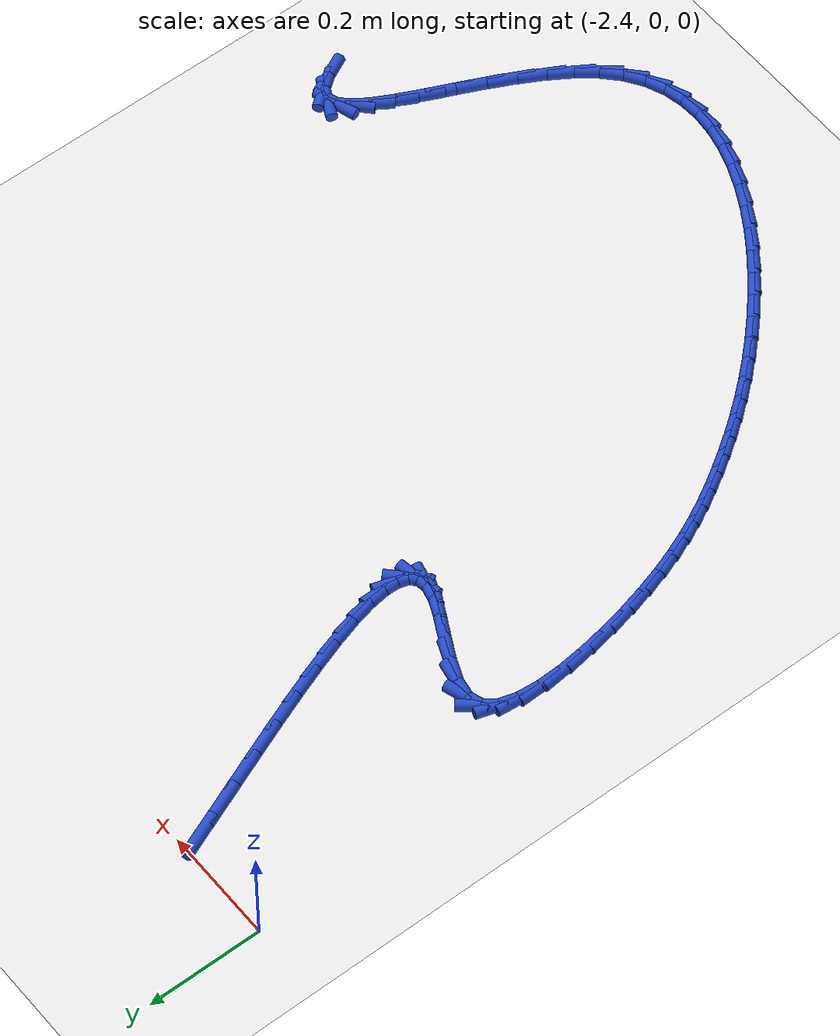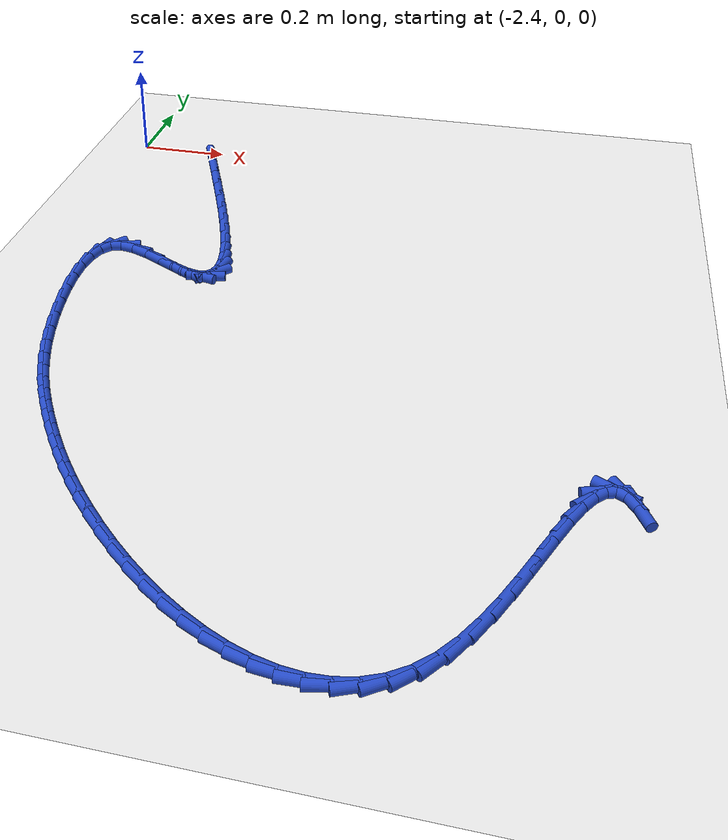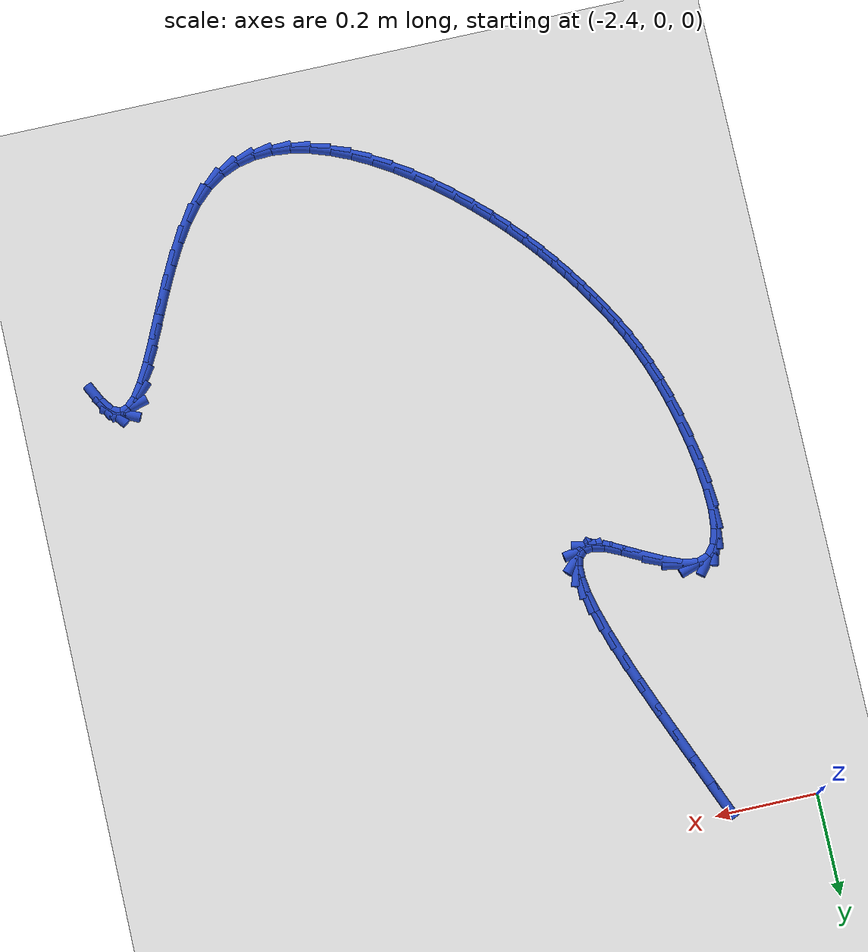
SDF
<sdf version="1.6">
 <world name="default">
  <model name="ground_plane">
   <static>1</static>
   <link name="link">
    <collision name="collision">
     <geometry><plane><normal>0 0 1</normal><size>100 100</size></plane></geometry>
     <surface><friction><ode><mu>100</mu><mu2>50</mu2></ode></friction></surface>
    </collision>
    <visual name="visual">
     <cast_shadows>0</cast_shadows>
     <geometry><plane><normal>0 0 1</normal><size>100 100</size></plane></geometry>
     <material>
      <script><uri>file://media/materials/scripts/gazebo.material</uri><name>Gazebo/WhiteGlow</name></script>
     </material>
    </visual>
   </link>
  </model>
  <model name="line">
   <link name="link_144">
    <pose>-2.2204279432989757 -0.02696453913052316 0.01 0 1.57 -1.1791450326111783</pose>
    <collision name="collision">
     <geometry><cylinder><radius>0.01</radius><length>0.08</length></cylinder></geometry>
    </collision>
    <visual name="visual">
     <material>
      <script><name>Gazebo/Blue</name><uri>file://media/materials/scripts/gazebo.material</uri></script>
     </material>
     <geometry><cylinder><radius>0.01</radius><length>0.08</length></cylinder></geometry>
    </visual>
   </link>
   <link name="link_145">
    <pose>-2.1966252475764843 -0.0846000640288197 0.01 0 1.57 -1.177241636359027</pose>
    <collision name="collision">
     <geometry><cylinder><radius>0.01</radius><length>0.08</length></cylinder></geometry>
    </collision>
    <visual name="visual">
     <material>
      <script><name>Gazebo/Blue</name><uri>file://media/materials/scripts/gazebo.material</uri></script>
     </material>
     <geometry><cylinder><radius>0.01</radius><length>0.08</length></cylinder></geometry>
    </visual>
   </link>
   <link name="link_146">
    <pose>-2.172904055237694 -0.1417297837772376 0.01 0 1.57 -1.1792668858618778</pose>
    <collision name="collision">
     <geometry><cylinder><radius>0.01</radius><length>0.08</length></cylinder></geometry>
    </collision>
    <visual name="visual">
     <material>
      <script><name>Gazebo/Blue</name><uri>file://media/materials/scripts/gazebo.material</uri></script>
     </material>
     <geometry><cylinder><radius>0.01</radius><length>0.08</length></cylinder></geometry>
    </visual>
   </link>
   <link name="link_147">
    <pose>-2.1497819063587293 -0.19773678435797556 0.01 0 1.57 -1.185555240978088</pose>
    <collision name="collision">
     <geometry><cylinder><radius>0.01</radius><length>0.08</length></cylinder></geometry>
    </collision>
    <visual name="visual">
     <material>
      <script><name>Gazebo/Blue</name><uri>file://media/materials/scripts/gazebo.material</uri></script>
     </material>
     <geometry><cylinder><radius>0.01</radius><length>0.08</length></cylinder></geometry>
    </visual>
   </link>
   <link name="link_148">
    <pose>-2.127776341015717 -0.2520041517532323 0.01 0 1.57 -1.1968314862634652</pose>
    <collision name="collision">
     <geometry><cylinder><radius>0.01</radius><length>0.08</length></cylinder></geometry>
    </collision>
    <visual name="visual">
     <material>
      <script><name>Gazebo/Blue</name><uri>file://media/materials/scripts/gazebo.material</uri></script>
     </material>
     <geometry><cylinder><radius>0.01</radius><length>0.08</length></cylinder></geometry>
    </visual>
   </link>
   <link name="link_149">
    <pose>-2.1074048992847825 -0.3039149719452069 0.01 0 1.57 -1.2143877123981714</pose>
    <collision name="collision">
     <geometry><cylinder><radius>0.01</radius><length>0.08</length></cylinder></geometry>
    </collision>
    <visual name="visual">
     <material>
      <script><name>Gazebo/Blue</name><uri>file://media/materials/scripts/gazebo.material</uri></script>
     </material>
     <geometry><cylinder><radius>0.01</radius><length>0.08</length></cylinder></geometry>
    </visual>
   </link>
   <link name="link_150">
    <pose>-2.089185121242051 -0.3528523309160983 0.01 0 1.57 -1.240439045323987</pose>
    <collision name="collision">
     <geometry><cylinder><radius>0.01</radius><length>0.08</length></cylinder></geometry>
    </collision>
    <visual name="visual">
     <material>
      <script><name>Gazebo/Blue</name><uri>file://media/materials/scripts/gazebo.material</uri></script>
     </material>
     <geometry><cylinder><radius>0.01</radius><length>0.08</length></cylinder></geometry>
    </visual>
   </link>
   <link name="link_151">
    <pose>-2.0736345469636492 -0.3981993146481051 0.01 0 1.57 -1.278850732788611</pose>
    <collision name="collision">
     <geometry><cylinder><radius>0.01</radius><length>0.08</length></cylinder></geometry>
    </collision>
    <visual name="visual">
     <material>
      <script><name>Gazebo/Blue</name><uri>file://media/materials/scripts/gazebo.material</uri></script>
     </material>
     <geometry><cylinder><radius>0.01</radius><length>0.08</length></cylinder></geometry>
    </visual>
   </link>
   <link name="link_152">
    <pose>-2.0612707165257023 -0.43933900912342505 0.01 0 1.57 -1.336714377932181</pose>
    <collision name="collision">
     <geometry><cylinder><radius>0.01</radius><length>0.08</length></cylinder></geometry>
    </collision>
    <visual name="visual">
     <material>
      <script><name>Gazebo/Blue</name><uri>file://media/materials/scripts/gazebo.material</uri></script>
     </material>
     <geometry><cylinder><radius>0.01</radius><length>0.08</length></cylinder></geometry>
    </visual>
   </link>
   <link name="link_153">
    <pose>-2.0526111700043357 -0.4756545003242598 0.01 0 1.57 -1.4280392559908983</pose>
    <collision name="collision">
     <geometry><cylinder><radius>0.01</radius><length>0.08</length></cylinder></geometry>
    </collision>
    <visual name="visual">
     <material>
      <script><name>Gazebo/Blue</name><uri>file://media/materials/scripts/gazebo.material</uri></script>
     </material>
     <geometry><cylinder><radius>0.01</radius><length>0.08</length></cylinder></geometry>
    </visual>
   </link>
   <link name="link_154">
    <pose>-2.048173447475675 -0.5065288742328069 0.01 0 1.57 1.5586419698361798</pose>
    <collision name="collision">
     <geometry><cylinder><radius>0.01</radius><length>0.08</length></cylinder></geometry>
    </collision>
    <visual name="visual">
     <material>
      <script><name>Gazebo/Blue</name><uri>file://media/materials/scripts/gazebo.material</uri></script>
     </material>
     <geometry><cylinder><radius>0.01</radius><length>0.08</length></cylinder></geometry>
    </visual>
   </link>
   <link name="link_155">
    <pose>-2.048475089015846 -0.5313452168312648 0.01 0 1.57 1.273477277662334</pose>
    <collision name="collision">
     <geometry><cylinder><radius>0.01</radius><length>0.08</length></cylinder></geometry>
    </collision>
    <visual name="visual">
     <material>
      <script><name>Gazebo/Blue</name><uri>file://media/materials/scripts/gazebo.material</uri></script>
     </material>
     <geometry><cylinder><radius>0.01</radius><length>0.08</length></cylinder></geometry>
    </visual>
   </link>
   <link name="link_156">
    <pose>-2.0540336347009753 -0.5494866141018327 0.01 0 1.57 0.763607343981176</pose>
    <collision name="collision">
     <geometry><cylinder><radius>0.01</radius><length>0.08</length></cylinder></geometry>
    </collision>
    <visual name="visual">
     <material>
      <script><name>Gazebo/Blue</name><uri>file://media/materials/scripts/gazebo.material</uri></script>
     </material>
     <geometry><cylinder><radius>0.01</radius><length>0.08</length></cylinder></geometry>
    </visual>
   </link>
   <link name="link_157">
    <pose>-2.0653666246071873 -0.5603361520267095 0.01 0 1.57 0.1653291269006639</pose>
    <collision name="collision">
     <geometry><cylinder><radius>0.01</radius><length>0.08</length></cylinder></geometry>
    </collision>
    <visual name="visual">
     <material>
      <script><name>Gazebo/Blue</name><uri>file://media/materials/scripts/gazebo.material</uri></script>
     </material>
     <geometry><cylinder><radius>0.01</radius><length>0.08</length></cylinder></geometry>
    </visual>
   </link>
   <link name="link_158">
    <pose>-2.0829915988106085 -0.5632769165880939 0.01 0 1.57 -0.2247070679910185</pose>
    <collision name="collision">
     <geometry><cylinder><radius>0.01</radius><length>0.08</length></cylinder></geometry>
    </collision>
    <visual name="visual">
     <material>
      <script><name>Gazebo/Blue</name><uri>file://media/materials/scripts/gazebo.material</uri></script>
     </material>
     <geometry><cylinder><radius>0.01</radius><length>0.08</length></cylinder></geometry>
    </visual>
   </link>
   <link name="link_159">
    <pose>-2.107426097387364 -0.5576919937681848 0.01 0 1.57 -0.42025205983365843</pose>
    <collision name="collision">
     <geometry><cylinder><radius>0.01</radius><length>0.08</length></cylinder></geometry>
    </collision>
    <visual name="visual">
     <material>
      <script><name>Gazebo/Blue</name><uri>file://media/materials/scripts/gazebo.material</uri></script>
     </material>
     <geometry><cylinder><radius>0.01</radius><length>0.08</length></cylinder></geometry>
    </visual>
   </link>
   <link name="link_160">
    <pose>-2.1386644913092883 -0.5437323393674517 0.01 0 1.57 -0.4831414923109578</pose>
    <collision name="collision">
     <geometry><cylinder><radius>0.01</radius><length>0.08</length></cylinder></geometry>
    </collision>
    <visual name="visual">
     <material>
      <script><name>Gazebo/Blue</name><uri>file://media/materials/scripts/gazebo.material</uri></script>
     </material>
     <geometry><cylinder><radius>0.01</radius><length>0.08</length></cylinder></geometry>
    </visual>
   </link>
   <link name="link_161">
    <pose>-2.174337708129764 -0.5250178007040865 0.01 0 1.57 -0.470840627662432</pose>
    <collision name="collision">
     <geometry><cylinder><radius>0.01</radius><length>0.08</length></cylinder></geometry>
    </collision>
    <visual name="visual">
     <material>
      <script><name>Gazebo/Blue</name><uri>file://media/materials/scripts/gazebo.material</uri></script>
     </material>
     <geometry><cylinder><radius>0.01</radius><length>0.08</length></cylinder></geometry>
    </visual>
   </link>
   <link name="link_162">
    <pose>-2.2114095873215547 -0.5061473287914993 0.01 0 1.57 -0.38666229530052143</pose>
    <collision name="collision">
     <geometry><cylinder><radius>0.01</radius><length>0.08</length></cylinder></geometry>
    </collision>
    <visual name="visual">
     <material>
      <script><name>Gazebo/Blue</name><uri>file://media/materials/scripts/gazebo.material</uri></script>
     </material>
     <geometry><cylinder><radius>0.01</radius><length>0.08</length></cylinder></geometry>
    </visual>
   </link>
   <link name="link_163">
    <pose>-2.246843928953009 -0.4917199324780535 0.01 0 1.57 -0.17331525416280902</pose>
    <collision name="collision">
     <geometry><cylinder><radius>0.01</radius><length>0.08</length></cylinder></geometry>
    </collision>
    <visual name="visual">
     <material>
      <script><name>Gazebo/Blue</name><uri>file://media/materials/scripts/gazebo.material</uri></script>
     </material>
     <geometry><cylinder><radius>0.01</radius><length>0.08</length></cylinder></geometry>
    </visual>
   </link>
   <link name="link_164">
    <pose>-2.2776045330924752 -0.4863346206121129 0.01 0 1.57 0.3147876134110258</pose>
    <collision name="collision">
     <geometry><cylinder><radius>0.01</radius><length>0.08</length></cylinder></geometry>
    </collision>
    <visual name="visual">
     <material>
      <script><name>Gazebo/Blue</name><uri>file://media/materials/scripts/gazebo.material</uri></script>
     </material>
     <geometry><cylinder><radius>0.01</radius><length>0.08</length></cylinder></geometry>
    </visual>
   </link>
   <link name="link_165">
    <pose>-2.301016983200665 -0.4939580543793966 0.01 0 1.57 0.9034925793166311</pose>
    <collision name="collision">
     <geometry><cylinder><radius>0.01</radius><length>0.08</length></cylinder></geometry>
    </collision>
    <visual name="visual">
     <material>
      <script><name>Gazebo/Blue</name><uri>file://media/materials/scripts/gazebo.material</uri></script>
     </material>
     <geometry><cylinder><radius>0.01</radius><length>0.08</length></cylinder></geometry>
    </visual>
   </link>
   <link name="link_166">
    <pose>-2.3169271341913324 -0.514151806738243 0.01 0 1.57 1.2736125708427457</pose>
    <collision name="collision">
     <geometry><cylinder><radius>0.01</radius><length>0.08</length></cylinder></geometry>
    </collision>
    <visual name="visual">
     <material>
      <script><name>Gazebo/Blue</name><uri>file://media/materials/scripts/gazebo.material</uri></script>
     </material>
     <geometry><cylinder><radius>0.01</radius><length>0.08</length></cylinder></geometry>
    </visual>
   </link>
   <link name="link_167">
    <pose>-2.3262530336525895 -0.5446034051660581 0.01 0 1.57 1.4756525729361374</pose>
    <collision name="collision">
     <geometry><cylinder><radius>0.01</radius><length>0.08</length></cylinder></geometry>
    </collision>
    <visual name="visual">
     <material>
      <script><name>Gazebo/Blue</name><uri>file://media/materials/scripts/gazebo.material</uri></script>
     </material>
     <geometry><cylinder><radius>0.01</radius><length>0.08</length></cylinder></geometry>
    </visual>
   </link>
   <link name="link_168">
    <pose>-2.329916671588205 -0.5829934863393454 0.01 0 1.57 -1.5463373757587866</pose>
    <collision name="collision">
     <geometry><cylinder><radius>0.01</radius><length>0.08</length></cylinder></geometry>
    </collision>
    <visual name="visual">
     <material>
      <script><name>Gazebo/Blue</name><uri>file://media/materials/scripts/gazebo.material</uri></script>
     </material>
     <geometry><cylinder><radius>0.01</radius><length>0.08</length></cylinder></geometry>
    </visual>
   </link>
   <link name="link_169">
    <pose>-2.328840038001949 -0.6270026869346081 0.01 0 1.57 -1.467696207438808</pose>
    <collision name="collision">
     <geometry><cylinder><radius>0.01</radius><length>0.08</length></cylinder></geometry>
    </collision>
    <visual name="visual">
     <material>
      <script><name>Gazebo/Blue</name><uri>file://media/materials/scripts/gazebo.material</uri></script>
     </material>
     <geometry><cylinder><radius>0.01</radius><length>0.08</length></cylinder></geometry>
    </visual>
   </link>
   <link name="link_170">
    <pose>-2.3239451228975923 -0.674311643628353 0.01 0 1.57 -1.4108306894903888</pose>
    <collision name="collision">
     <geometry><cylinder><radius>0.01</radius><length>0.08</length></cylinder></geometry>
    </collision>
    <visual name="visual">
     <material>
      <script><name>Gazebo/Blue</name><uri>file://media/materials/scripts/gazebo.material</uri></script>
     </material>
     <geometry><cylinder><radius>0.01</radius><length>0.08</length></cylinder></geometry>
    </visual>
   </link>
   <link name="link_171">
    <pose>-2.316153916278903 -0.7226009930970827 0.01 0 1.57 -1.3657239111112542</pose>
    <collision name="collision">
     <geometry><cylinder><radius>0.01</radius><length>0.08</length></cylinder></geometry>
    </collision>
    <visual name="visual">
     <material>
      <script><name>Gazebo/Blue</name><uri>file://media/materials/scripts/gazebo.material</uri></script>
     </material>
     <geometry><cylinder><radius>0.01</radius><length>0.08</length></cylinder></geometry>
    </visual>
   </link>
   <link name="link_172">
    <pose>-2.306388408149651 -0.7695513720173015 0.01 0 1.57 -1.3255144294445163</pose>
    <collision name="collision">
     <geometry><cylinder><radius>0.01</radius><length>0.08</length></cylinder></geometry>
    </collision>
    <visual name="visual">
     <material>
      <script><name>Gazebo/Blue</name><uri>file://media/materials/scripts/gazebo.material</uri></script>
     </material>
     <geometry><cylinder><radius>0.01</radius><length>0.08</length></cylinder></geometry>
    </visual>
   </link>
   <link name="link_173">
    <pose>-2.295490999259971 -0.8130848996851427 0.01 0 1.57 -1.2833043143460505</pose>
    <collision name="collision">
     <geometry><cylinder><radius>0.01</radius><length>0.08</length></cylinder></geometry>
    </collision>
    <visual name="visual">
     <material>
      <script><name>Gazebo/Blue</name><uri>file://media/materials/scripts/gazebo.material</uri></script>
     </material>
     <geometry><cylinder><radius>0.01</radius><length>0.08</length></cylinder></geometry>
    </visual>
   </link>
   <link name="link_174">
    <pose>-2.2837155887894984 -0.8529092744090707 0.01 0 1.57 -1.23789327799518</pose>
    <collision name="collision">
     <geometry><cylinder><radius>0.01</radius><length>0.08</length></cylinder></geometry>
    </collision>
    <visual name="visual">
     <material>
      <script><name>Gazebo/Blue</name><uri>file://media/materials/scripts/gazebo.material</uri></script>
     </material>
     <geometry><cylinder><radius>0.01</radius><length>0.08</length></cylinder></geometry>
    </visual>
   </link>
   <link name="link_175">
    <pose>-2.27105219533112 -0.8895328374543168 0.01 0 1.57 -1.1905782033672379</pose>
    <collision name="collision">
     <geometry><cylinder><radius>0.01</radius><length>0.08</length></cylinder></geometry>
    </collision>
    <visual name="visual">
     <material>
      <script><name>Gazebo/Blue</name><uri>file://media/materials/scripts/gazebo.material</uri></script>
     </material>
     <geometry><cylinder><radius>0.01</radius><length>0.08</length></cylinder></geometry>
    </visual>
   </link>
   <link name="link_176">
    <pose>-2.2574895903464256 -0.9234677140207247 0.01 0 1.57 -1.1431920434440923</pose>
    <collision name="collision">
     <geometry><cylinder><radius>0.01</radius><length>0.08</length></cylinder></geometry>
    </collision>
    <visual name="visual">
     <material>
      <script><name>Gazebo/Blue</name><uri>file://media/materials/scripts/gazebo.material</uri></script>
     </material>
     <geometry><cylinder><radius>0.01</radius><length>0.08</length></cylinder></geometry>
    </visual>
   </link>
   <link name="link_177">
    <pose>-2.243016545297011 -0.9552260293081382 0.01 0 1.57 -1.0979464722950445</pose>
    <collision name="collision">
     <geometry><cylinder><radius>0.01</radius><length>0.08</length></cylinder></geometry>
    </collision>
    <visual name="visual">
     <material>
      <script><name>Gazebo/Blue</name><uri>file://media/materials/scripts/gazebo.material</uri></script>
     </material>
     <geometry><cylinder><radius>0.01</radius><length>0.08</length></cylinder></geometry>
    </visual>
   </link>
   <link name="link_178">
    <pose>-2.2276218316444667 -0.9853199085164007 0.01 0 1.57 -1.0571484398662463</pose>
    <collision name="collision">
     <geometry><cylinder><radius>0.01</radius><length>0.08</length></cylinder></geometry>
    </collision>
    <visual name="visual">
     <material>
      <script><name>Gazebo/Blue</name><uri>file://media/materials/scripts/gazebo.material</uri></script>
     </material>
     <geometry><cylinder><radius>0.01</radius><length>0.08</length></cylinder></geometry>
    </visual>
   </link>
   <link name="link_179">
    <pose>-2.211294220850386 -1.0142614768453562 0.01 0 1.57 -1.0228530783057979</pose>
    <collision name="collision">
     <geometry><cylinder><radius>0.01</radius><length>0.08</length></cylinder></geometry>
    </collision>
    <visual name="visual">
     <material>
      <script><name>Gazebo/Blue</name><uri>file://media/materials/scripts/gazebo.material</uri></script>
     </material>
     <geometry><cylinder><radius>0.01</radius><length>0.08</length></cylinder></geometry>
    </visual>
   </link>
   <link name="link_180">
    <pose>-2.194022484376362 -1.042562859494848 0.01 0 1.57 -0.9960470309510411</pose>
    <collision name="collision">
     <geometry><cylinder><radius>0.01</radius><length>0.08</length></cylinder></geometry>
    </collision>
    <visual name="visual">
     <material>
      <script><name>Gazebo/Blue</name><uri>file://media/materials/scripts/gazebo.material</uri></script>
     </material>
     <geometry><cylinder><radius>0.01</radius><length>0.08</length></cylinder></geometry>
    </visual>
   </link>
   <link name="link_181">
    <pose>-2.1757875981281574 -1.0707166037014493 0.01 0 1.57 -0.9706009014850936</pose>
    <collision name="collision">
     <geometry><cylinder><radius>0.01</radius><length>0.08</length></cylinder></geometry>
    </collision>
    <visual name="visual">
     <material>
      <script><name>Gazebo/Blue</name><uri>file://media/materials/scripts/gazebo.material</uri></script>
     </material>
     <geometry><cylinder><radius>0.01</radius><length>0.08</length></cylinder></geometry>
    </visual>
   </link>
   <link name="link_182">
    <pose>-2.1564645772593076 -1.0989491440908135 0.01 0 1.57 -0.9420595473569793</pose>
    <collision name="collision">
     <geometry><cylinder><radius>0.01</radius><length>0.08</length></cylinder></geometry>
    </collision>
    <visual name="visual">
     <material>
      <script><name>Gazebo/Blue</name><uri>file://media/materials/scripts/gazebo.material</uri></script>
     </material>
     <geometry><cylinder><radius>0.01</radius><length>0.08</length></cylinder></geometry>
    </visual>
   </link>
   <link name="link_183">
    <pose>-2.1358520087827464 -1.1272949716527079 0.01 0 1.57 -0.910917090154631</pose>
    <collision name="collision">
     <geometry><cylinder><radius>0.01</radius><length>0.08</length></cylinder></geometry>
    </collision>
    <visual name="visual">
     <material>
      <script><name>Gazebo/Blue</name><uri>file://media/materials/scripts/gazebo.material</uri></script>
     </material>
     <geometry><cylinder><radius>0.01</radius><length>0.08</length></cylinder></geometry>
    </visual>
   </link>
   <link name="link_184">
    <pose>-2.113746789032426 -1.1557843313613874 0.01 0 1.57 -0.8778101607537819</pose>
    <collision name="collision">
     <geometry><cylinder><radius>0.01</radius><length>0.08</length></cylinder></geometry>
    </collision>
    <visual name="visual">
     <material>
      <script><name>Gazebo/Blue</name><uri>file://media/materials/scripts/gazebo.material</uri></script>
     </material>
     <geometry><cylinder><radius>0.01</radius><length>0.08</length></cylinder></geometry>
    </visual>
   </link>
   <link name="link_185">
    <pose>-2.0899458143422964 -1.1844474681911095 0.01 0 1.57 -0.8433778241285257</pose>
    <collision name="collision">
     <geometry><cylinder><radius>0.01</radius><length>0.08</length></cylinder></geometry>
    </collision>
    <visual name="visual">
     <material>
      <script><name>Gazebo/Blue</name><uri>file://media/materials/scripts/gazebo.material</uri></script>
     </material>
     <geometry><cylinder><radius>0.01</radius><length>0.08</length></cylinder></geometry>
    </visual>
   </link>
   <link name="link_186">
    <pose>-2.0642459810463105 -1.2133146271161277 0.01 0 1.57 -0.808233495490646</pose>
    <collision name="collision">
     <geometry><cylinder><radius>0.01</radius><length>0.08</length></cylinder></geometry>
    </collision>
    <visual name="visual">
     <material>
      <script><name>Gazebo/Blue</name><uri>file://media/materials/scripts/gazebo.material</uri></script>
     </material>
     <geometry><cylinder><radius>0.01</radius><length>0.08</length></cylinder></geometry>
    </visual>
   </link>
   <link name="link_187">
    <pose>-2.0364441962415643 -1.2424160412724465 0.01 0 1.57 -0.7727395748113773</pose>
    <collision name="collision">
     <geometry><cylinder><radius>0.01</radius><length>0.08</length></cylinder></geometry>
    </collision>
    <visual name="visual">
     <material>
      <script><name>Gazebo/Blue</name><uri>file://media/materials/scripts/gazebo.material</uri></script>
     </material>
     <geometry><cylinder><radius>0.01</radius><length>0.08</length></cylinder></geometry>
    </visual>
   </link>
   <link name="link_188">
    <pose>-2.006431889679486 -1.271677979476214 0.01 0 1.57 -0.7360092429191887</pose>
    <collision name="collision">
     <geometry><cylinder><radius>0.01</radius><length>0.08</length></cylinder></geometry>
    </collision>
    <visual name="visual">
     <material>
      <script><name>Gazebo/Blue</name><uri>file://media/materials/scripts/gazebo.material</uri></script>
     </material>
     <geometry><cylinder><radius>0.01</radius><length>0.08</length></cylinder></geometry>
    </visual>
   </link>
   <link name="link_189">
    <pose>-1.9744251461388658 -1.3006696264207693 0.01 0 1.57 -0.696795499922004</pose>
    <collision name="collision">
     <geometry><cylinder><radius>0.01</radius><length>0.08</length></cylinder></geometry>
    </collision>
    <visual name="visual">
     <material>
      <script><name>Gazebo/Blue</name><uri>file://media/materials/scripts/gazebo.material</uri></script>
     </material>
     <geometry><cylinder><radius>0.01</radius><length>0.08</length></cylinder></geometry>
    </visual>
   </link>
   <link name="link_190">
    <pose>-1.94070969804053 -1.3288835622035997 0.01 0 1.57 -0.6538917946489319</pose>
    <collision name="collision">
     <geometry><cylinder><radius>0.01</radius><length>0.08</length></cylinder></geometry>
    </collision>
    <visual name="visual">
     <material>
      <script><name>Gazebo/Blue</name><uri>file://media/materials/scripts/gazebo.material</uri></script>
     </material>
     <geometry><cylinder><radius>0.01</radius><length>0.08</length></cylinder></geometry>
    </visual>
   </link>
   <link name="link_191">
    <pose>-1.9055712778053064 -1.355812366922193 0.01 0 1.57 -0.6059607643381041</pose>
    <collision name="collision">
     <geometry><cylinder><radius>0.01</radius><length>0.08</length></cylinder></geometry>
    </collision>
    <visual name="visual">
     <material>
      <script><name>Gazebo/Blue</name><uri>file://media/materials/scripts/gazebo.material</uri></script>
     </material>
     <geometry><cylinder><radius>0.01</radius><length>0.08</length></cylinder></geometry>
    </visual>
   </link>
   <link name="link_192">
    <pose>-1.8692956178540208 -1.3809486206740367 0.01 0 1.57 -0.5514360572516107</pose>
    <collision name="collision">
     <geometry><cylinder><radius>0.01</radius><length>0.08</length></cylinder></geometry>
    </collision>
    <visual name="visual">
     <material>
      <script><name>Gazebo/Blue</name><uri>file://media/materials/scripts/gazebo.material</uri></script>
     </material>
     <geometry><cylinder><radius>0.01</radius><length>0.08</length></cylinder></geometry>
    </visual>
   </link>
   <link name="link_193">
    <pose>-1.8321684506075013 -1.4037849035566188 0.01 0 1.57 -0.4884273982219559</pose>
    <collision name="collision">
     <geometry><cylinder><radius>0.01</radius><length>0.08</length></cylinder></geometry>
    </collision>
    <visual name="visual">
     <material>
      <script><name>Gazebo/Blue</name><uri>file://media/materials/scripts/gazebo.material</uri></script>
     </material>
     <geometry><cylinder><radius>0.01</radius><length>0.08</length></cylinder></geometry>
    </visual>
   </link>
   <link name="link_194">
    <pose>-1.7944755084865733 -1.4238137956674257 0.01 0 1.57 -0.41463854444928067</pose>
    <collision name="collision">
     <geometry><cylinder><radius>0.01</radius><length>0.08</length></cylinder></geometry>
    </collision>
    <visual name="visual">
     <material>
      <script><name>Gazebo/Blue</name><uri>file://media/materials/scripts/gazebo.material</uri></script>
     </material>
     <geometry><cylinder><radius>0.01</radius><length>0.08</length></cylinder></geometry>
    </visual>
   </link>
   <link name="link_195">
    <pose>-1.7565025239120653 -1.4405278771039458 0.01 0 1.57 -0.32733640299853745</pose>
    <collision name="collision">
     <geometry><cylinder><radius>0.01</radius><length>0.08</length></cylinder></geometry>
    </collision>
    <visual name="visual">
     <material>
      <script><name>Gazebo/Blue</name><uri>file://media/materials/scripts/gazebo.material</uri></script>
     </material>
     <geometry><cylinder><radius>0.01</radius><length>0.08</length></cylinder></geometry>
    </visual>
   </link>
   <link name="link_196">
    <pose>-1.718535229304803 -1.4534197279636667 0.01 0 1.57 -0.22346403606565327</pose>
    <collision name="collision">
     <geometry><cylinder><radius>0.01</radius><length>0.08</length></cylinder></geometry>
    </collision>
    <visual name="visual">
     <material>
      <script><name>Gazebo/Blue</name><uri>file://media/materials/scripts/gazebo.material</uri></script>
     </material>
     <geometry><cylinder><radius>0.01</radius><length>0.08</length></cylinder></geometry>
    </visual>
   </link>
   <link name="link_197">
    <pose>-1.6808593570856138 -1.4619819283440754 0.01 0 1.57 -0.10007585173562852</pose>
    <collision name="collision">
     <geometry><cylinder><radius>0.01</radius><length>0.08</length></cylinder></geometry>
    </collision>
    <visual name="visual">
     <material>
      <script><name>Gazebo/Blue</name><uri>file://media/materials/scripts/gazebo.material</uri></script>
     </material>
     <geometry><cylinder><radius>0.01</radius><length>0.08</length></cylinder></geometry>
    </visual>
   </link>
   <link name="link_198">
    <pose>-1.6437606396753242 -1.46570705834266 0.01 0 1.57 0.044659761702188994</pose>
    <collision name="collision">
     <geometry><cylinder><radius>0.01</radius><length>0.08</length></cylinder></geometry>
    </collision>
    <visual name="visual">
     <material>
      <script><name>Gazebo/Blue</name><uri>file://media/materials/scripts/gazebo.material</uri></script>
     </material>
     <geometry><cylinder><radius>0.01</radius><length>0.08</length></cylinder></geometry>
    </visual>
   </link>
   <link name="link_199">
    <pose>-1.6075248094947618 -1.464087698056908 0.01 0 1.57 0.2098008883627595</pose>
    <collision name="collision">
     <geometry><cylinder><radius>0.01</radius><length>0.08</length></cylinder></geometry>
    </collision>
    <visual name="visual">
     <material>
      <script><name>Gazebo/Blue</name><uri>file://media/materials/scripts/gazebo.material</uri></script>
     </material>
     <geometry><cylinder><radius>0.01</radius><length>0.08</length></cylinder></geometry>
    </visual>
   </link>
   <link name="link_200">
    <pose>-1.5724375989647532 -1.4566164275843063 0.01 0 1.57 0.3899346098755832</pose>
    <collision name="collision">
     <geometry><cylinder><radius>0.01</radius><length>0.08</length></cylinder></geometry>
    </collision>
    <visual name="visual">
     <material>
      <script><name>Gazebo/Blue</name><uri>file://media/materials/scripts/gazebo.material</uri></script>
     </material>
     <geometry><cylinder><radius>0.01</radius><length>0.08</length></cylinder></geometry>
    </visual>
   </link>
   <link name="link_201">
    <pose>-1.538784740506126 -1.4427858270223437 0.01 0 1.57 0.5750763085067505</pose>
    <collision name="collision">
     <geometry><cylinder><radius>0.01</radius><length>0.08</length></cylinder></geometry>
    </collision>
    <visual name="visual">
     <material>
      <script><name>Gazebo/Blue</name><uri>file://media/materials/scripts/gazebo.material</uri></script>
     </material>
     <geometry><cylinder><radius>0.01</radius><length>0.08</length></cylinder></geometry>
    </visual>
   </link>
   <link name="link_202">
    <pose>-1.5068519665397049 -1.4220884764685064 0.01 0 1.57 0.7532668857524488</pose>
    <collision name="collision">
     <geometry><cylinder><radius>0.01</radius><length>0.08</length></cylinder></geometry>
    </collision>
    <visual name="visual">
     <material>
      <script><name>Gazebo/Blue</name><uri>file://media/materials/scripts/gazebo.material</uri></script>
     </material>
     <geometry><cylinder><radius>0.01</radius><length>0.08</length></cylinder></geometry>
    </visual>
   </link>
   <link name="link_203">
    <pose>-1.476923553323554 -1.3940240876062273 0.01 0 1.57 0.9018891049130213</pose>
    <collision name="collision">
     <geometry><cylinder><radius>0.01</radius><length>0.08</length></cylinder></geometry>
    </collision>
    <visual name="visual">
     <material>
      <script><name>Gazebo/Blue</name><uri>file://media/materials/scripts/gazebo.material</uri></script>
     </material>
     <geometry><cylinder><radius>0.01</radius><length>0.08</length></cylinder></geometry>
    </visual>
   </link>
   <link name="link_204">
    <pose>-1.4491270617366385 -1.358859888788284 0.01 0 1.57 1.0036501636283242</pose>
    <collision name="collision">
     <geometry><cylinder><radius>0.01</radius><length>0.08</length></cylinder></geometry>
    </collision>
    <visual name="visual">
     <material>
      <script><name>Gazebo/Blue</name><uri>file://media/materials/scripts/gazebo.material</uri></script>
     </material>
     <geometry><cylinder><radius>0.01</radius><length>0.08</length></cylinder></geometry>
    </visual>
   </link>
   <link name="link_205">
    <pose>-1.4232956405681916 -1.318304997401107 0.01 0 1.57 1.0710395585452481</pose>
    <collision name="collision">
     <geometry><cylinder><radius>0.01</radius><length>0.08</length></cylinder></geometry>
    </collision>
    <visual name="visual">
     <material>
      <script><name>Gazebo/Blue</name><uri>file://media/materials/scripts/gazebo.material</uri></script>
     </material>
     <geometry><cylinder><radius>0.01</radius><length>0.08</length></cylinder></geometry>
    </visual>
   </link>
   <link name="link_206">
    <pose>-1.3992299613510792 -1.2742275888366716 0.01 0 1.57 1.1135824749768308</pose>
    <collision name="collision">
     <geometry><cylinder><radius>0.01</radius><length>0.08</length></cylinder></geometry>
    </collision>
    <visual name="visual">
     <material>
      <script><name>Gazebo/Blue</name><uri>file://media/materials/scripts/gazebo.material</uri></script>
     </material>
     <geometry><cylinder><radius>0.01</radius><length>0.08</length></cylinder></geometry>
    </visual>
   </link>
   <link name="link_207">
    <pose>-1.3767306956181669 -1.2284958384869535 0.01 0 1.57 1.1361466752939626</pose>
    <collision name="collision">
     <geometry><cylinder><radius>0.01</radius><length>0.08</length></cylinder></geometry>
    </collision>
    <visual name="visual">
     <material>
      <script><name>Gazebo/Blue</name><uri>file://media/materials/scripts/gazebo.material</uri></script>
     </material>
     <geometry><cylinder><radius>0.01</radius><length>0.08</length></cylinder></geometry>
    </visual>
   </link>
   <link name="link_208">
    <pose>-1.3555985149023198 -1.182977921743928 0.01 0 1.57 1.1399634305421027</pose>
    <collision name="collision">
     <geometry><cylinder><radius>0.01</radius><length>0.08</length></cylinder></geometry>
    </collision>
    <visual name="visual">
     <material>
      <script><name>Gazebo/Blue</name><uri>file://media/materials/scripts/gazebo.material</uri></script>
     </material>
     <geometry><cylinder><radius>0.01</radius><length>0.08</length></cylinder></geometry>
    </visual>
   </link>
   <link name="link_209">
    <pose>-1.335634090736404 -1.1395420139995707 0.01 0 1.57 1.122394756763722</pose>
    <collision name="collision">
     <geometry><cylinder><radius>0.01</radius><length>0.08</length></cylinder></geometry>
    </collision>
    <visual name="visual">
     <material>
      <script><name>Gazebo/Blue</name><uri>file://media/materials/scripts/gazebo.material</uri></script>
     </material>
     <geometry><cylinder><radius>0.01</radius><length>0.08</length></cylinder></geometry>
    </visual>
   </link>
   <link name="link_210">
    <pose>-1.3166380946532839 -1.1000562906458562 0.01 0 1.57 1.074593878278267</pose>
    <collision name="collision">
     <geometry><cylinder><radius>0.01</radius><length>0.08</length></cylinder></geometry>
    </collision>
    <visual name="visual">
     <material>
      <script><name>Gazebo/Blue</name><uri>file://media/materials/scripts/gazebo.material</uri></script>
     </material>
     <geometry><cylinder><radius>0.01</radius><length>0.08</length></cylinder></geometry>
    </visual>
   </link>
   <link name="link_211">
    <pose>-1.298411198185826 -1.0663889270747609 0.01 0 1.57 0.9738786471953584</pose>
    <collision name="collision">
     <geometry><cylinder><radius>0.01</radius><length>0.08</length></cylinder></geometry>
    </collision>
    <visual name="visual">
     <material>
      <script><name>Gazebo/Blue</name><uri>file://media/materials/scripts/gazebo.material</uri></script>
     </material>
     <geometry><cylinder><radius>0.01</radius><length>0.08</length></cylinder></geometry>
    </visual>
   </link>
   <link name="link_212">
    <pose>-1.2807540728668951 -1.0404080986782593 0.01 0 1.57 0.7598773536285156</pose>
    <collision name="collision">
     <geometry><cylinder><radius>0.01</radius><length>0.08</length></cylinder></geometry>
    </collision>
    <visual name="visual">
     <material>
      <script><name>Gazebo/Blue</name><uri>file://media/materials/scripts/gazebo.material</uri></script>
     </material>
     <geometry><cylinder><radius>0.01</radius><length>0.08</length></cylinder></geometry>
    </visual>
   </link>
   <link name="link_213">
    <pose>-1.2634673902293567 -1.023981980848327 0.01 0 1.57 0.2843965950045606</pose>
    <collision name="collision">
     <geometry><cylinder><radius>0.01</radius><length>0.08</length></cylinder></geometry>
    </collision>
    <visual name="visual">
     <material>
      <script><name>Gazebo/Blue</name><uri>file://media/materials/scripts/gazebo.material</uri></script>
     </material>
     <geometry><cylinder><radius>0.01</radius><length>0.08</length></cylinder></geometry>
    </visual>
   </link>
   <link name="link_214">
    <pose>-1.2463518218060767 -1.01897874897694 0.01 0 1.57 -0.4503044561412075</pose>
    <collision name="collision">
     <geometry><cylinder><radius>0.01</radius><length>0.08</length></cylinder></geometry>
    </collision>
    <visual name="visual">
     <material>
      <script><name>Gazebo/Blue</name><uri>file://media/materials/scripts/gazebo.material</uri></script>
     </material>
     <geometry><cylinder><radius>0.01</radius><length>0.08</length></cylinder></geometry>
    </visual>
   </link>
   <link name="link_215">
    <pose>-1.22920803912992 -1.0272665784560726 0.01 0 1.57 -0.9214260292528506</pose>
    <collision name="collision">
     <geometry><cylinder><radius>0.01</radius><length>0.08</length></cylinder></geometry>
    </collision>
    <visual name="visual">
     <material>
      <script><name>Gazebo/Blue</name><uri>file://media/materials/scripts/gazebo.material</uri></script>
     </material>
     <geometry><cylinder><radius>0.01</radius><length>0.08</length></cylinder></geometry>
    </visual>
   </link>
   <link name="link_216">
    <pose>-1.2118809322815502 -1.0500890888134653 0.01 0 1.57 -1.1062278917842918</pose>
    <collision name="collision">
     <geometry><cylinder><radius>0.01</radius><length>0.08</length></cylinder></geometry>
    </collision>
    <visual name="visual">
     <material>
      <script><name>Gazebo/Blue</name><uri>file://media/materials/scripts/gazebo.material</uri></script>
     </material>
     <geometry><cylinder><radius>0.01</radius><length>0.08</length></cylinder></geometry>
    </visual>
   </link>
  </model>
 </world>
</sdf>
